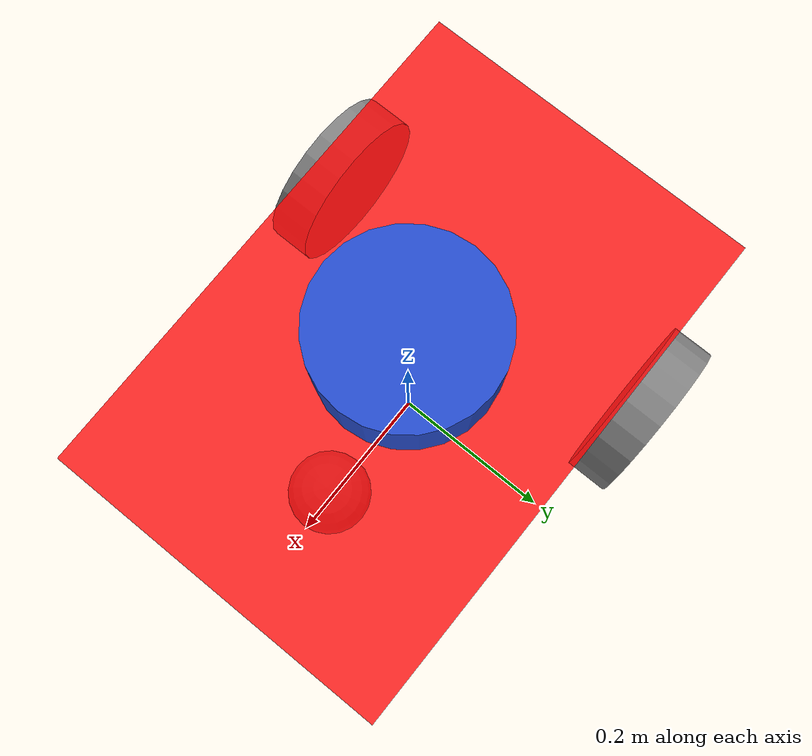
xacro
<?xml version="1.0"?>
<robot name="atom" xmlns:xacro="http://www.ros.org/wiki/xacro">

    <xacro:include filename="common_propeties.xacro" />
    <xacro:include filename="robot_base.xacro" />
    <xacro:include filename="lidar.xacro" />
    <xacro:include filename="robot_gazebo.xacro" />

</robot>

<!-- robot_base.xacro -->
<robot xmlns:xacro="http://www.ros.org/wiki/xacro">
    <xacro:property name="length" value="0.6" />
    <xacro:property name="width" value="0.4" />
    <xacro:property name="height" value="0.2" />

    <xacro:property name="wheel_radius" value="0.1" />
    <xacro:property name="wheel_width" value="0.05" />
    <xacro:property name="caster_wheel_radius" value="0.05" />

    <xacro:property name="mass" value="5.0" />
    <xacro:property name="mass_wheel" value="1.0" />

    <link name="base_link">
        <visual>
            <geometry>
                <box size="${length} ${width} ${height}"/>
            </geometry>
            <origin xyz="0.0 0.0 ${height/2}" rpy="0.0 0.0 0.0"/>
            <material name="red">
                <color rgba="1.0 0.0 0.0 0.8"/>
            </material>
        </visual>

        <xacro:box_inertia m="${mass}" x="${length}" y="${width}" z="${height}"
                            o_xyz="0.0 0.0 ${height/2}" o_rpy="0.0 0.0 0.0"/>

        <collision>
            <geometry>
                <box size="${length} ${width} ${height}"/>
            </geometry>
            <origin xyz="0.0 0.0 ${height/2}" rpy="0.0 0.0 0.0"/>
        </collision>
    </link>

    <link name="left_wheel">
        <visual>
            <geometry>
                <cylinder radius="${wheel_radius}" length="${wheel_width}"/>
            </geometry>
            <origin xyz="0.0 0.0 0.0" rpy="${pi/2} 0.0 0.0"/>
            <material name="grey">
                <color rgba="0.5 0.5 0.5 1.0"/>
            </material>
        </visual>
        <xacro:cylinder_inertia m="${mass_wheel}" r="${wheel_radius}"
                                 l="${wheel_width}" o_xyz="0.0 0.0 0.0" o_rpy="0.0 0.0 0.0"/>
        <collision>
            <geometry>
                <cylinder radius="${wheel_radius}" length="${wheel_width}"/>
            </geometry>
            <origin xyz="0.0 0.0 0.0" rpy="${pi/2} 0.0 0.0"/>
        </collision>
    </link>

    <link name="right_wheel">
        <visual>
            <geometry>
                <cylinder radius="${wheel_radius}" length="${wheel_width}"/>
            </geometry>
            <origin xyz="0.0 0.0 0.0" rpy="-${pi/2} 0.0 0.0"/>
            <material name="grey">
                <color rgba="0.5 0.5 0.5 1.0"/>
            </material>
        </visual>
        <xacro:cylinder_inertia m="${mass_wheel}" r="${wheel_radius}"
                                 l="${wheel_width}" o_xyz="0.0 0.0 0.0" o_rpy="0.0 0.0 0.0"/>
        <collision>
            <geometry>
                <cylinder radius="${wheel_radius}" length="${wheel_width}"/>
            </geometry>
            <origin xyz="0.0 0.0 0.0" rpy="${pi/2} 0.0 0.0"/>
        </collision>
    </link>

    <link name="caster_wheel">
        <visual>

            <geometry>
                    <sphere radius="${caster_wheel_radius}"/>
            </geometry>

            <origin xyz="0.0 0.0 0.0" rpy="0.0 0.0 0.0"/>
            <material name="grey">
                <color rgba="0.5 0.5 0.5 1.0"/>
            </material>
        </visual>
        <xacro:sphere_inertia m="0.5" r="${caster_wheel_radius}" o_xyz="0.0 0.0 0.0" o_rpy="0.0 0.0 0.0"/>
        <collision>
            <geometry>
                <sphere radius="${caster_wheel_radius}"/>
            </geometry>
            <origin xyz="0.0 0.0 0.0" rpy="0.0 0.0 0.0"/>
        </collision>
    </link>

    <link name="base_footprint"></link>

    <joint name="base_joint" type="fixed">
        <parent link="base_footprint"/>
        <child link="base_link"/>
        <origin xyz="0.0 0.0 ${wheel_radius}" rpy="0.0 0.0 0.0"/>
    </joint>
    <joint name="left_wheel_joint" type="continuous">
        <parent link="base_link"/>
        <child link="left_wheel"/>
        <origin xyz="${-(length/4)} ${(width/2) + (wheel_width/2)} 0.0" rpy="0.0 0.0 0.0"/>
        <axis xyz="0.0 1.0 0.0"/>
    </joint>
    <joint name="right_wheel_joint" type="continuous">
        <parent link="base_link"/>
        <child link="right_wheel"/>
        <origin xyz="${-(length/4)} ${-((width/2) + (wheel_width/2))} 0.0" rpy="0.0 0.0 0.0"/>
        <axis xyz="0.0 1.0 0.0"/>
    </joint>

    <joint name="wheel_joint_caster" type="fixed">
        <parent link="base_link"/>
        <child link="caster_wheel"/>
        <origin xyz="${(length/4)} 0.0 ${-(wheel_radius - caster_wheel_radius)}" rpy="0.0 0.0 0.0"/>
    </joint>
</robot>

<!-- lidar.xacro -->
<robot xmlns:xacro="http://www.ros.org/wiki/xacro">

    <xacro:property name="lidar_radius" value="0.1" />
    <xacro:property name="lidar_length" value="0.1" />
    <link name="lidar_link">
        <visual>
            <geometry>
                <cylinder radius="${lidar_radius}" length="${lidar_length}"/>
            </geometry>
            <origin xyz="0 0 0" rpy="0.0 0.0 0.0"/>
            <material name="blue"/>
        </visual>
        <xacro:cylinder_inertia m="0.1" r="${lidar_radius}" l="${lidar_length}" o_xyz="0 0 0" o_rpy="0.0 0.0 0.0"/>
        <collision>
            <geometry>
                <cylinder radius="${lidar_radius}" length="${lidar_length}"/>
            </geometry>
        </collision>
    </link>

    <joint name="lidar_joint" type="fixed">
        <parent link="base_link"/>
        <child link="lidar_link"/>
        <origin xyz="0.0 0.0 ${height+(lidar_length/2)}" rpy="0.0 0.0 0.0"/>
        <axis xyz="0.0 0.0 1.0"/>
    </joint>
</robot>
